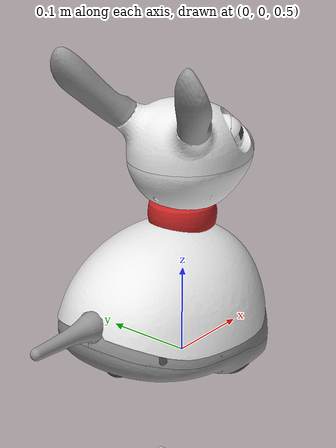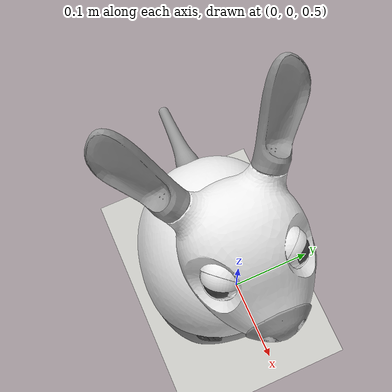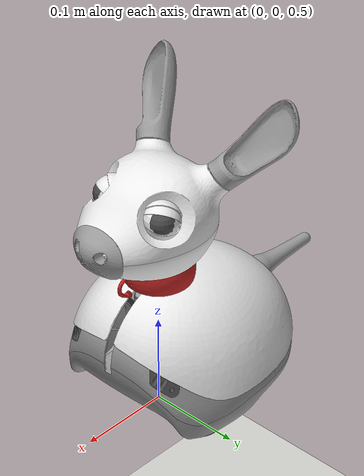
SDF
<sdf version="1.7">
 <world name="default">
  <physics name="default_physics" default="0" type="ode">
   <max_step_size>0.001</max_step_size>
   <real_time_factor>1</real_time_factor>
   <real_time_update_rate>1000</real_time_update_rate>
  </physics>
  <scene><ambient>0.4 0.4 0.4 1</ambient><background>0.7 0.7 0.7 1</background><shadows>1</shadows></scene>
  <light name="sun" type="directional">
   <pose>0 0 10 0 -0 0</pose>
   <diffuse>0.8 0.8 0.8 1</diffuse>
   <specular>0.1 0.1 0.1 1</specular>
   <attenuation>
    <range>1000</range>
    <constant>0.9</constant>
    <linear>0.01</linear>
    <quadratic>0.001</quadratic>
   </attenuation>
   <direction>-0.5 0.5 -1</direction>
   <spot><inner_angle>0</inner_angle><outer_angle>0</outer_angle><falloff>0</falloff></spot>
  </light>
  <model name="ground_plane">
   <static>1</static>
   <link name="link">
    <collision name="collision">
     <geometry><plane><normal>0 0 1</normal><size>100 100</size></plane></geometry>
     <surface>
      <contact><collide_bitmask>65535</collide_bitmask></contact>
      <friction><ode><mu>100</mu><mu2>50</mu2></ode></friction>
     </surface>
    </collision>
    <visual name="visual">
     <cast_shadows>0</cast_shadows>
     <geometry><plane><normal>0 0 1</normal><size>100 100</size></plane></geometry>
     <material>
      <script><uri>file://media/materials/scripts/gazebo.material</uri><name>Gazebo/Grey</name></script>
     </material>
    </visual>
   </link>
   <pose>0 0 -1 0 -0 0</pose>
  </model>
  <model name="miro">
   <frame name="miro_body::__model__" attached_to="miro_body::body">
    <pose relative_to="__model__">0 0 0 0 -0 0</pose>
   </frame>
   <link name="miro_body::body">
    <inertial>
     <pose>-0.06 0 0.05 0 -0 0</pose>
     <mass>1.5708</mass>
     <inertia>
      <ixx>0.00523599</ixx>
      <ixy>0</ixy>
      <ixz>0</ixz>
      <iyy>0.00523599</iyy>
      <iyz>0</iyz>
      <izz>0.00785398</izz>
     </inertia>
    </inertial>
    <visual name="visual_valance">
     <geometry><mesh><uri>model://miro_model/meshes/valance.dae</uri></mesh></geometry>
     <material>
      <script><uri>file://media/materials/scripts/gazebo.material</uri><name>Gazebo/Grey</name></script>
     </material>
    </visual>
    <collision name="collision_valance">
     <geometry><mesh><uri>model://miro_model/meshes/valance_collision.dae</uri></mesh></geometry>
     <surface><friction><ode><mu>0.1</mu><mu2>0.1</mu2></ode></friction></surface>
    </collision>
    <visual name="visual_skirt_lh">
     <geometry><mesh><uri>model://miro_model/meshes/skirt_lh.dae</uri></mesh></geometry>
     <material>
      <script><uri>file://media/materials/scripts/gazebo.material</uri><name>Gazebo/Grey</name></script>
     </material>
    </visual>
    <visual name="visual_skirt_rh">
     <geometry><mesh><uri>model://miro_model/meshes/skirt_rh.dae</uri></mesh></geometry>
     <material>
      <script><uri>file://media/materials/scripts/gazebo.material</uri><name>Gazebo/Grey</name></script>
     </material>
    </visual>
    <visual name="visual_cliff_sensor_L_asm">
     <geometry><mesh><uri>model://miro_model/meshes/cliff_sensor_L_asm.dae</uri></mesh></geometry>
     <material>
      <script><uri>file://media/materials/scripts/gazebo.material</uri><name>Gazebo/DarkGrey</name></script>
     </material>
    </visual>
    <visual name="visual_cliff_sensor_R_asm">
     <geometry><mesh><uri>model://miro_model/meshes/cliff_sensor_R_asm.dae</uri></mesh></geometry>
     <material>
      <script><uri>file://media/materials/scripts/gazebo.material</uri><name>Gazebo/DarkGrey</name></script>
     </material>
    </visual>
    <visual name="visual_light_sensor_holder_asm_L">
     <geometry><mesh><uri>model://miro_model/meshes/light_sensor_holder_asm_L.dae</uri></mesh></geometry>
     <material>
      <script><uri>file://media/materials/scripts/gazebo.material</uri><name>Gazebo/DarkGrey</name></script>
     </material>
    </visual>
    <visual name="visual_light_sensor_holder_asm_R">
     <geometry><mesh><uri>model://miro_model/meshes/light_sensor_holder_asm_R.dae</uri></mesh></geometry>
     <material>
      <script><uri>file://media/materials/scripts/gazebo.material</uri><name>Gazebo/DarkGrey</name></script>
     </material>
    </visual>
    <visual name="visual_body_shell">
     <geometry><mesh><uri>model://miro_model/meshes/body_shell.dae</uri></mesh></geometry>
     <material>
      <script><uri>file://media/materials/scripts/gazebo.material</uri><name>Gazebo/White</name></script>
     </material>
    </visual>
    <collision name="collision_body_shell">
     <geometry><mesh><uri>model://miro_model/meshes/body_shell_collision.dae</uri></mesh></geometry>
     <surface><friction><ode><mu>0.1</mu><mu2>0.1</mu2></ode></friction></surface>
    </collision>
    <visual name="visual_slider">
     <geometry><mesh><uri>model://miro_model/meshes/slider.dae</uri></mesh></geometry>
     <material>
      <script><uri>file://media/materials/scripts/gazebo.material</uri><name>Gazebo/DarkGrey</name></script>
     </material>
    </visual>
    <collision name="collision_slider">
     <pose>-0.1075 0 0.0264 0 -0 0</pose>
     <geometry><sphere><radius>0.015</radius></sphere></geometry>
     <surface><friction><ode><mu>0.01</mu><mu2>0.01</mu2></ode></friction></surface>
    </collision>
    <sensor name="acc_body" type="imu">
     <always_on>1</always_on>
     <update_rate>50</update_rate>
     <visualize>0</visualize>
    </sensor>
    <sensor name="cliff_l" type="sonar">
     <pose>0.062 0.055 0.085 0 -0.52 0</pose>
     <always_on>1</always_on>
     <update_rate>50</update_rate>
     <visualize>0</visualize>
     <sonar><min>0</min><max>0.5</max><radius>0.025</radius></sonar>
    </sensor>
    <sensor name="cliff_r" type="sonar">
     <pose>0.062 -0.055 0.085 0 -0.52 0</pose>
     <always_on>1</always_on>
     <update_rate>50</update_rate>
     <visualize>0</visualize>
     <sonar><min>0</min><max>0.5</max><radius>0.025</radius></sonar>
    </sensor>
    <sensor name="lightfl" type="camera">
     <pose>0.055 0.065 0.08 -0 -0.06 0.52</pose>
     <camera>
      <horizontal_fov>1.57</horizontal_fov>
      <image><width>16</width><height>12</height></image>
      <clip><near>0.01</near><far>10</far></clip>
     </camera>
     <always_on>1</always_on>
     <update_rate>5</update_rate>
     <visualize>0</visualize>
    </sensor>
    <sensor name="lightfr" type="camera">
     <pose>0.055 -0.065 0.08 0 -0.06 -0.52</pose>
     <camera>
      <horizontal_fov>1.57</horizontal_fov>
      <image><width>16</width><height>12</height></image>
      <clip><near>0.01</near><far>10</far></clip>
     </camera>
     <always_on>1</always_on>
     <update_rate>5</update_rate>
     <visualize>0</visualize>
    </sensor>
    <sensor name="lightrl" type="camera">
     <pose>-0.125 0.072 0.06 0 -0.26 2.61</pose>
     <camera>
      <horizontal_fov>1.57</horizontal_fov>
      <image><width>16</width><height>12</height></image>
      <clip><near>0.01</near><far>10</far></clip>
     </camera>
     <always_on>1</always_on>
     <update_rate>5</update_rate>
     <visualize>0</visualize>
    </sensor>
    <sensor name="lightrr" type="camera">
     <pose>-0.125 -0.072 0.06 0 -0.26 -2.61</pose>
     <camera>
      <horizontal_fov>1.57</horizontal_fov>
      <image><width>16</width><height>12</height></image>
      <clip><near>0.01</near><far>10</far></clip>
     </camera>
     <always_on>1</always_on>
     <update_rate>5</update_rate>
     <visualize>0</visualize>
    </sensor>
    <pose relative_to="miro_body::__model__">0 0 0 0 -0 0</pose>
   </link>
   <link name="miro_body::wheel_lh">
    <inertial>
     <pose>0.00063 0.07779 0.044838 0 -0 0</pose>
     <mass>0.134041</mass>
     <inertia>
      <ixx>0.00014298</ixx>
      <ixy>0</ixy>
      <ixz>0</ixz>
      <iyy>0.00014298</iyy>
      <iyz>0</iyz>
      <izz>0.00014298</izz>
     </inertia>
    </inertial>
    <visual name="visual_wheel_tyre_lh">
     <geometry><mesh><uri>model://miro_model/meshes/wheel_tyre_lh.dae</uri></mesh></geometry>
     <material>
      <script><uri>file://media/materials/scripts/gazebo.material</uri><name>Gazebo/DarkGrey</name></script>
     </material>
    </visual>
    <collision name="collision_wheel_tyre_lh">
     <pose>0.00063 0.07779 0.044838 -1.5446 0 0</pose>
     <geometry><cylinder><radius>0.045</radius><length>0.002</length></cylinder></geometry>
     <surface><friction><ode><mu>1</mu><mu2>1</mu2></ode></friction></surface>
    </collision>
    <visual name="visual_wheel_rim_lh">
     <geometry><mesh><uri>model://miro_model/meshes/wheel_rim_lh.dae</uri></mesh></geometry>
     <material>
      <script><uri>file://media/materials/scripts/gazebo.material</uri><name>Gazebo/Grey</name></script>
     </material>
    </visual>
    <pose relative_to="miro_body::__model__">0 0 0 0 -0 0</pose>
   </link>
   <link name="miro_body::wheel_rh">
    <inertial>
     <pose>0.00063 -0.07779 0.044838 0 -0 0</pose>
     <mass>0.134041</mass>
     <inertia>
      <ixx>0.00014298</ixx>
      <ixy>0</ixy>
      <ixz>0</ixz>
      <iyy>0.00014298</iyy>
      <iyz>0</iyz>
      <izz>0.00014298</izz>
     </inertia>
    </inertial>
    <visual name="visual_wheel_tyre_rh">
     <geometry><mesh><uri>model://miro_model/meshes/wheel_tyre_rh.dae</uri></mesh></geometry>
     <material>
      <script><uri>file://media/materials/scripts/gazebo.material</uri><name>Gazebo/DarkGrey</name></script>
     </material>
    </visual>
    <collision name="collision_wheel_tyre_rh">
     <pose>0.00063 -0.07779 0.044838 1.5446 -0 0</pose>
     <geometry><cylinder><radius>0.045</radius><length>0.002</length></cylinder></geometry>
     <surface><friction><ode><mu>1</mu><mu2>1</mu2></ode></friction></surface>
    </collision>
    <visual name="visual_wheel_rim_rh">
     <geometry><mesh><uri>model://miro_model/meshes/wheel_rim_rh.dae</uri></mesh></geometry>
     <material>
      <script><uri>file://media/materials/scripts/gazebo.material</uri><name>Gazebo/Grey</name></script>
     </material>
    </visual>
    <pose relative_to="miro_body::__model__">0 0 0 0 -0 0</pose>
   </link>
   <joint name="miro_body::body_wheel_lh" type="revolute">
    <pose>0.00063 0.07779 0.044838 0 -0 0</pose>
    <parent>miro_body::body</parent>
    <child>miro_body::wheel_lh</child>
    <axis>
     <xyz>0 0.999657 0.026185</xyz>
     <dynamics>
      <friction>0.1</friction>
      <damping>0.1</damping>
      <spring_reference>0</spring_reference>
      <spring_stiffness>0</spring_stiffness>
     </dynamics>
     <limit><lower>-1e+16</lower><upper>1e+16</upper></limit>
    </axis>
   </joint>
   <joint name="miro_body::body_wheel_rh" type="revolute">
    <pose>0.00063 -0.07779 0.044838 0 -0 0</pose>
    <parent>miro_body::body</parent>
    <child>miro_body::wheel_rh</child>
    <axis>
     <xyz>0 0.999657 -0.026185</xyz>
     <dynamics>
      <friction>0.1</friction>
      <damping>0.1</damping>
      <spring_reference>0</spring_reference>
      <spring_stiffness>0</spring_stiffness>
     </dynamics>
     <limit><lower>-1e+16</lower><upper>1e+16</upper></limit>
    </axis>
   </joint>
   <frame name="miro_tail::__model__" attached_to="miro_tail::tail_gmbl">
    <pose relative_to="__model__">0 0 0 0 -0 0</pose>
   </frame>
   <link name="miro_tail::tail_gmbl">
    <inertial>
     <pose>-0.143 0 0.085 0 -0 0</pose>
     <mass>0.056549</mass>
     <inertia>
      <ixx>3.393e-05</ixx>
      <ixy>0</ixy>
      <ixz>0</ixz>
      <iyy>3.393e-05</iyy>
      <iyz>0</iyz>
      <izz>3.393e-05</izz>
     </inertia>
    </inertial>
    <pose relative_to="miro_tail::__model__">0 0 0 0 -0 0</pose>
   </link>
   <joint name="miro_tail::body_tail_gmbl" type="revolute">
    <pose>-0.143 0 0.085 0 -0 0</pose>
    <parent>miro_body::body</parent>
    <child>miro_tail::tail_gmbl</child>
    <axis>
     <xyz>0 1 0</xyz>
     <limit><lower>-1.57</lower><upper>1.57</upper></limit>
     <dynamics>
      <friction>0.01</friction>
      <damping>0.02</damping>
      <spring_reference>0</spring_reference>
      <spring_stiffness>0</spring_stiffness>
     </dynamics>
    </axis>
   </joint>
   <link name="miro_tail::tail">
    <inertial>
     <pose>-0.143 0 0.085 0 -0 0</pose>
     <mass>0.056549</mass>
     <inertia>
      <ixx>3.393e-05</ixx>
      <ixy>0</ixy>
      <ixz>0</ixz>
      <iyy>3.393e-05</iyy>
      <iyz>0</iyz>
      <izz>3.393e-05</izz>
     </inertia>
    </inertial>
    <visual name="visual_tail">
     <geometry><mesh><uri>model://miro_model/meshes/tail.dae</uri></mesh></geometry>
     <material>
      <script><uri>file://media/materials/scripts/gazebo.material</uri><name>Gazebo/Grey</name></script>
     </material>
    </visual>
    <collision name="collision_tail">
     <geometry><mesh><uri>model://miro_model/meshes/tail_collision.dae</uri></mesh></geometry>
     <surface><friction><ode><mu>0.1</mu><mu2>0.1</mu2></ode></friction></surface>
    </collision>
    <pose relative_to="miro_tail::__model__">0 0 0 0 -0 0</pose>
   </link>
   <joint name="miro_tail::tail_gmbl_tail" type="revolute">
    <pose>-0.143 0 0.085 0 -0 0</pose>
    <parent>miro_tail::tail_gmbl</parent>
    <child>miro_tail::tail</child>
    <axis>
     <xyz>0 0 1</xyz>
     <limit><lower>-1.57</lower><upper>1.57</upper></limit>
     <dynamics>
      <friction>0.01</friction>
      <damping>0.02</damping>
      <spring_reference>0</spring_reference>
      <spring_stiffness>0</spring_stiffness>
     </dynamics>
    </axis>
   </joint>
   <joint name="body_neck" type="revolute">
    <pose>-0.002 0 0.081 0 -0 0</pose>
    <parent>miro_body::body</parent>
    <child>miro_neck::neck</child>
    <axis>
     <xyz>0 1 0</xyz>
     <limit><lower>0</lower><upper>1.57</upper></limit>
     <dynamics>
      <spring_stiffness>0.4</spring_stiffness>
      <spring_reference>0</spring_reference>
      <friction>0.01</friction>
      <damping>0.1</damping>
     </dynamics>
    </axis>
   </joint>
   <frame name="miro_neck::__model__" attached_to="miro_neck::neck">
    <pose relative_to="__model__">0 0 0 0 -0 0</pose>
   </frame>
   <link name="miro_neck::neck">
    <inertial>
     <pose>-0.002 0 0.141 0 -0 0</pose>
     <mass>0.075398</mass>
     <inertia>
      <ixx>9.802e-05</ixx>
      <ixy>0</ixy>
      <ixz>0</ixz>
      <iyy>9.802e-05</iyy>
      <iyz>0</iyz>
      <izz>1.508e-05</izz>
     </inertia>
    </inertial>
    <pose relative_to="miro_neck::__model__">0 0 0 0 -0 0</pose>
   </link>
   <joint name="neck_gmbl" type="revolute">
    <pose>-0.002 0 0.201 0 -0 0</pose>
    <parent>miro_neck::neck</parent>
    <child>miro_gmbl::gmbl</child>
    <axis>
     <xyz>0 0 1</xyz>
     <limit><lower>-1.57</lower><upper>1.57</upper></limit>
     <dynamics>
      <friction>0.01</friction>
      <damping>0.1</damping>
      <spring_reference>0</spring_reference>
      <spring_stiffness>0</spring_stiffness>
     </dynamics>
    </axis>
   </joint>
   <frame name="miro_gmbl::__model__" attached_to="miro_gmbl::gmbl">
    <pose relative_to="__model__">0 0 0 0 -0 0</pose>
   </frame>
   <link name="miro_gmbl::gmbl">
    <inertial>
     <pose>-0.002 0 0.171 0 -0 0</pose>
     <mass>0.03927</mass>
     <inertia>
      <ixx>2.487e-05</ixx>
      <ixy>0</ixy>
      <ixz>0</ixz>
      <iyy>2.487e-05</iyy>
      <iyz>0</iyz>
      <izz>4.909e-05</izz>
     </inertia>
    </inertial>
    <visual name="visual_collar">
     <geometry><mesh><uri>model://miro_model/meshes/collar.dae</uri></mesh></geometry>
     <material>
      <script><uri>file://media/materials/scripts/gazebo.material</uri><name>Gazebo/Red</name></script>
     </material>
    </visual>
    <pose relative_to="miro_gmbl::__model__">0 0 0 0 -0 0</pose>
   </link>
   <joint name="gmbl_head" type="revolute">
    <pose>-0.002 0 0.201 0 -0 0</pose>
    <parent>miro_gmbl::gmbl</parent>
    <child>miro_head::head</child>
    <axis>
     <xyz>0 1 0</xyz>
     <limit><lower>-1.57</lower><upper>1.57</upper></limit>
     <dynamics>
      <spring_stiffness>0.1</spring_stiffness>
      <spring_reference>-0.5</spring_reference>
      <friction>0.01</friction>
      <damping>0.1</damping>
     </dynamics>
    </axis>
   </joint>
   <frame name="miro_head::__model__" attached_to="miro_head::head">
    <pose relative_to="__model__">0 0 0 0 -0 0</pose>
   </frame>
   <link name="miro_head::head">
    <inertial>
     <pose>-0.002 0 0.221 0 -0 0</pose>
     <mass>0.261799</mass>
     <inertia>
      <ixx>0.00043633</ixx>
      <ixy>0</ixy>
      <ixz>0</ixz>
      <iyy>0.00043633</iyy>
      <iyz>0</iyz>
      <izz>0.00043633</izz>
     </inertia>
    </inertial>
    <visual name="visual_head_lower">
     <geometry><mesh><uri>model://miro_model/meshes/head_lower.dae</uri></mesh></geometry>
     <material>
      <script><uri>file://media/materials/scripts/gazebo.material</uri><name>Gazebo/White</name></script>
     </material>
    </visual>
    <collision name="collision_head_lower">
     <geometry><mesh><uri>model://miro_model/meshes/head_lower_collision.dae</uri></mesh></geometry>
     <surface><friction><ode><mu>0.1</mu><mu2>0.1</mu2></ode></friction></surface>
    </collision>
    <visual name="visual_head_upper">
     <geometry><mesh><uri>model://miro_model/meshes/head_upper.dae</uri></mesh></geometry>
     <material>
      <script><uri>file://media/materials/scripts/gazebo.material</uri><name>Gazebo/White</name></script>
     </material>
    </visual>
    <collision name="collision_head_upper">
     <geometry><mesh><uri>model://miro_model/meshes/head_upper_collision.dae</uri></mesh></geometry>
     <surface><friction><ode><mu>0.1</mu><mu2>0.1</mu2></ode></friction></surface>
    </collision>
    <visual name="visual_eyelid_lower_lh">
     <geometry><mesh><uri>model://miro_model/meshes/eyelid_lower_lh.dae</uri></mesh></geometry>
     <material>
      <script><uri>file://media/materials/scripts/gazebo.material</uri><name>Gazebo/White</name></script>
     </material>
    </visual>
    <visual name="visual_eyelid_lower_rh">
     <geometry><mesh><uri>model://miro_model/meshes/eyelid_lower_rh.dae</uri></mesh></geometry>
     <material>
      <script><uri>file://media/materials/scripts/gazebo.material</uri><name>Gazebo/White</name></script>
     </material>
    </visual>
    <visual name="visual_nose">
     <geometry><mesh><uri>model://miro_model/meshes/nose.dae</uri></mesh></geometry>
     <material>
      <script><uri>file://media/materials/scripts/gazebo.material</uri><name>Gazebo/Grey</name></script>
     </material>
    </visual>
    <collision name="collision_nose">
     <geometry><mesh><uri>model://miro_model/meshes/nose_collision.dae</uri></mesh></geometry>
     <surface><friction><ode><mu>0.3</mu><mu2>0.3</mu2></ode></friction></surface>
    </collision>
    <visual name="visual_1">
     <pose>0.029 0.033 0.252 0 -0 0</pose>
     <geometry><sphere><radius>0.018</radius></sphere></geometry>
     <material>
      <script><uri>file://media/materials/scripts/gazebo.material</uri><name>Gazebo/White</name></script>
     </material>
    </visual>
    <visual name="visual_2">
     <pose>0.0315 0.036 0.254 0 -0 0</pose>
     <geometry><sphere><radius>0.015</radius></sphere></geometry>
     <material>
      <script><uri>file://media/materials/scripts/gazebo.material</uri><name>Gazebo/DarkGrey</name></script>
     </material>
    </visual>
    <visual name="visual_3">
     <pose>0.029 -0.033 0.252 0 -0 0</pose>
     <geometry><sphere><radius>0.018</radius></sphere></geometry>
     <material>
      <script><uri>file://media/materials/scripts/gazebo.material</uri><name>Gazebo/White</name></script>
     </material>
    </visual>
    <visual name="visual_4">
     <pose>0.0315 -0.036 0.254 0 -0 0</pose>
     <geometry><sphere><radius>0.015</radius></sphere></geometry>
     <material>
      <script><uri>file://media/materials/scripts/gazebo.material</uri><name>Gazebo/DarkGrey</name></script>
     </material>
    </visual>
    <sensor name="eye_l" type="wideanglecamera">
     <pose>0.0377 0.0431 0.2595 -0.4262 -0.6816 0.6244</pose>
     <camera>
      <horizontal_fov>2.0944</horizontal_fov>
      <image><width>1280</width><height>720</height></image>
      <clip><near>0.006</near><far>100</far></clip>
      <lens>
       <type>custom</type>
       <scale_to_hfov>1</scale_to_hfov>
       <custom_function><c1>2</c1><c2>1.25</c2><c3>0</c3><f>1</f><fun>sin</fun></custom_function>
      </lens>
     </camera>
     <always_on>1</always_on>
     <update_rate>10</update_rate>
     <visualize>0</visualize>
    </sensor>
    <sensor name="eye_r" type="wideanglecamera">
     <pose>0.0377 -0.0431 0.2595 0.4261 -0.6816 -0.6244</pose>
     <camera>
      <horizontal_fov>2.0944</horizontal_fov>
      <image><width>1280</width><height>720</height></image>
      <clip><near>0.006</near><far>100</far></clip>
      <lens>
       <type>custom</type>
       <scale_to_hfov>1</scale_to_hfov>
       <custom_function><c1>2</c1><c2>1.25</c2><c3>0</c3><f>1</f><fun>sin</fun></custom_function>
      </lens>
     </camera>
     <always_on>1</always_on>
     <update_rate>10</update_rate>
     <visualize>0</visualize>
    </sensor>
    <sensor name="eye_l_narrow" type="camera">
     <pose>0.0377 0.0431 0.2595 -0.4262 -0.6816 0.6244</pose>
     <camera>
      <horizontal_fov>2.0944</horizontal_fov>
      <image><width>1280</width><height>720</height></image>
      <clip><near>0.006</near><far>100</far></clip>
     </camera>
     <always_on>1</always_on>
     <update_rate>10</update_rate>
     <visualize>0</visualize>
    </sensor>
    <sensor name="eye_r_narrow" type="camera">
     <pose>0.0377 -0.0431 0.2595 0.4261 -0.6816 -0.6244</pose>
     <camera>
      <horizontal_fov>2.0944</horizontal_fov>
      <image><width>1280</width><height>720</height></image>
      <clip><near>0.006</near><far>100</far></clip>
     </camera>
     <always_on>1</always_on>
     <update_rate>10</update_rate>
     <visualize>0</visualize>
    </sensor>
    <sensor name="gaze" type="camera">
     <pose>0.0577 0 0.2795 0 -0.785398 0</pose>
     <camera>
      <horizontal_fov>1</horizontal_fov>
      <image><width>1280</width><height>720</height></image>
      <clip><near>0.001</near><far>100</far></clip>
     </camera>
     <always_on>1</always_on>
     <update_rate>10</update_rate>
     <visualize>0</visualize>
    </sensor>
    <sensor name="overhead" type="camera">
     <pose>0 0 1 0 1.22 0</pose>
     <camera>
      <horizontal_fov>1.0472</horizontal_fov>
      <image><width>1280</width><height>720</height></image>
      <clip><near>0.01</near><far>2</far></clip>
     </camera>
     <always_on>1</always_on>
     <update_rate>10</update_rate>
     <visualize>0</visualize>
    </sensor>
    <sensor name="acc_head" type="imu">
     <always_on>1</always_on>
     <update_rate>50</update_rate>
     <visualize>0</visualize>
    </sensor>
    <sensor name="sonar" type="sonar">
     <pose>0.1 0 0.235 3.14159 -1.57079 3.14159</pose>
     <always_on>1</always_on>
     <update_rate>50</update_rate>
     <visualize>0</visualize>
     <sonar><min>0</min><max>1</max><radius>0.309</radius></sonar>
    </sensor>
    <pose relative_to="miro_head::__model__">0 0 0 0 -0 0</pose>
   </link>
   <link name="miro_head::eyelid_lh">
    <inertial>
     <pose>0.029 0.032 0.252 0 -0 0</pose>
     <mass>0.016755</mass>
     <inertia>
      <ixx>4.47e-06</ixx>
      <ixy>0</ixy>
      <ixz>0</ixz>
      <iyy>4.47e-06</iyy>
      <iyz>0</iyz>
      <izz>4.47e-06</izz>
     </inertia>
    </inertial>
    <visual name="visual_eyelid_lh">
     <geometry><mesh><uri>model://miro_model/meshes/eyelid_lh.dae</uri></mesh></geometry>
     <material>
      <script><uri>file://media/materials/scripts/gazebo.material</uri><name>Gazebo/White</name></script>
     </material>
    </visual>
    <pose relative_to="miro_head::__model__">0 0 0 0 -0 0</pose>
   </link>
   <link name="miro_head::eyelid_rh">
    <inertial>
     <pose>0.029 -0.032 0.252 0 -0 0</pose>
     <mass>0.016755</mass>
     <inertia>
      <ixx>4.47e-06</ixx>
      <ixy>0</ixy>
      <ixz>0</ixz>
      <iyy>4.47e-06</iyy>
      <iyz>0</iyz>
      <izz>4.47e-06</izz>
     </inertia>
    </inertial>
    <visual name="visual_eyelid_rh">
     <geometry><mesh><uri>model://miro_model/meshes/eyelid_rh.dae</uri></mesh></geometry>
     <material>
      <script><uri>file://media/materials/scripts/gazebo.material</uri><name>Gazebo/White</name></script>
     </material>
    </visual>
    <pose relative_to="miro_head::__model__">0 0 0 0 -0 0</pose>
   </link>
   <joint name="miro_head::head_eyelid_lh" type="revolute">
    <pose>0.029 0.032 0.252 0 -0 0</pose>
    <parent>miro_head::head</parent>
    <child>miro_head::eyelid_lh</child>
    <axis>
     <xyz>-0.675 0.675 -0.2978</xyz>
     <limit><lower>-1.57</lower><upper>1.57</upper></limit>
     <dynamics>
      <friction>0.1</friction>
      <damping>0.1</damping>
      <spring_reference>-0.5</spring_reference>
      <spring_stiffness>0.02</spring_stiffness>
     </dynamics>
    </axis>
    <physics>
     <ode>
      <cfm_damping>1</cfm_damping>
      <implicit_spring_damper>1</implicit_spring_damper>
      <limit><cfm>0</cfm><erp>0.2</erp></limit>
     </ode>
    </physics>
   </joint>
   <joint name="miro_head::head_eyelid_rh" type="revolute">
    <pose>0.029 -0.032 0.252 0 -0 0</pose>
    <parent>miro_head::head</parent>
    <child>miro_head::eyelid_rh</child>
    <axis>
     <xyz>0.675 0.675 0.2978</xyz>
     <limit><lower>-1.57</lower><upper>1.57</upper></limit>
     <dynamics>
      <friction>0.1</friction>
      <damping>0.1</damping>
      <spring_reference>-0.5</spring_reference>
      <spring_stiffness>0.02</spring_stiffness>
     </dynamics>
    </axis>
    <physics>
     <ode>
      <cfm_damping>1</cfm_damping>
      <implicit_spring_damper>1</implicit_spring_damper>
      <limit><cfm>0</cfm><erp>0.2</erp></limit>
     </ode>
    </physics>
   </joint>
   <link name="miro_head::ear_lh">
    <inertial>
     <pose>-0.0437 0.0474 0.2773 0 -0 0</pose>
     <mass>0.056549</mass>
     <inertia>
      <ixx>3.393e-05</ixx>
      <ixy>0</ixy>
      <ixz>0</ixz>
      <iyy>3.393e-05</iyy>
      <iyz>0</iyz>
      <izz>3.393e-05</izz>
     </inertia>
    </inertial>
    <visual name="visual_ear_lh">
     <geometry><mesh><uri>model://miro_model/meshes/ear_lh.dae</uri></mesh></geometry>
     <material>
      <script><uri>file://media/materials/scripts/gazebo.material</uri><name>Gazebo/Grey</name></script>
     </material>
    </visual>
    <collision name="collision_ear_lh">
     <geometry><mesh><uri>model://miro_model/meshes/ear_lh_collision.dae</uri></mesh></geometry>
     <surface><friction><ode><mu>0.3</mu><mu2>0.3</mu2></ode></friction></surface>
    </collision>
    <pose relative_to="miro_head::__model__">0 0 0 0 -0 0</pose>
   </link>
   <link name="miro_head::ear_rh">
    <inertial>
     <pose>-0.0437 -0.0474 0.2773 0 -0 0</pose>
     <mass>0.056549</mass>
     <inertia>
      <ixx>3.393e-05</ixx>
      <ixy>0</ixy>
      <ixz>0</ixz>
      <iyy>3.393e-05</iyy>
      <iyz>0</iyz>
      <izz>3.393e-05</izz>
     </inertia>
    </inertial>
    <visual name="visual_ear_rh">
     <geometry><mesh><uri>model://miro_model/meshes/ear_rh.dae</uri></mesh></geometry>
     <material>
      <script><uri>file://media/materials/scripts/gazebo.material</uri><name>Gazebo/Grey</name></script>
     </material>
    </visual>
    <collision name="collision_ear_rh">
     <geometry><mesh><uri>model://miro_model/meshes/ear_rh_collision.dae</uri></mesh></geometry>
     <surface><friction><ode><mu>0.3</mu><mu2>0.3</mu2></ode></friction></surface>
    </collision>
    <pose relative_to="miro_head::__model__">0 0 0 0 -0 0</pose>
   </link>
   <joint name="miro_head::head_ear_lh" type="revolute">
    <pose>-0.0437 0.0474 0.2773 0 -0 0</pose>
    <parent>miro_head::head</parent>
    <child>miro_head::ear_lh</child>
    <axis>
     <xyz>-0.573 0.4344 0.6949</xyz>
     <limit><lower>-1.57</lower><upper>1.57</upper></limit>
     <dynamics>
      <friction>0.01</friction>
      <damping>0.001</damping>
      <spring_reference>0</spring_reference>
      <spring_stiffness>0</spring_stiffness>
     </dynamics>
    </axis>
   </joint>
   <joint name="miro_head::head_ear_rh" type="revolute">
    <pose>-0.0437 -0.0474 0.2773 0 -0 0</pose>
    <parent>miro_head::head</parent>
    <child>miro_head::ear_rh</child>
    <axis>
     <xyz>-0.573 -0.4344 0.6949</xyz>
     <limit><lower>-1.57</lower><upper>1.57</upper></limit>
     <dynamics>
      <friction>0.01</friction>
      <damping>0.001</damping>
      <spring_reference>0</spring_reference>
      <spring_stiffness>0</spring_stiffness>
     </dynamics>
    </axis>
   </joint>
   <plugin name="miro_model" filename="libmiro_gazebo.so"/>
   <pose>0 0 0.5 0 -0 0</pose>
  </model>
  <gravity>0 0 -9.8</gravity>
  <magnetic_field>6e-06 2.3e-05 -4.2e-05</magnetic_field>
  <atmosphere type="adiabatic"/>
  <spherical_coordinates>
   <surface_model>EARTH_WGS84</surface_model>
   <latitude_deg>0</latitude_deg>
   <longitude_deg>0</longitude_deg>
   <elevation>0</elevation>
   <heading_deg>0</heading_deg>
  </spherical_coordinates>
  <model name="bigFloorBox">
   <link name="link_0">
    <inertial>
     <mass>402.228</mass>
     <inertia><ixx>13638.2</ixx><ixy>0</ixy><ixz>0</ixz><iyy>13395.7</iyy><iyz>0</iyz><izz>26966.8</izz></inertia>
    </inertial>
    <gravity>0</gravity>
    <visual name="visual">
     <geometry><box><size>20 20 0.5</size></box></geometry>
     <material>
      <lighting>1</lighting>
      <script><uri>file://media/materials/scripts/gazebo.material</uri><name>Gazebo/CeilingTiled</name></script>
      <shader type="pixel"><normal_map>__default__</normal_map></shader>
      <ambient>0.3 0.3 0.3 1</ambient>
      <diffuse>0.7 0.7 0.7 1</diffuse>
      <specular>0.01 0.01 0.01 1</specular>
      <emissive>0 0 0 1</emissive>
     </material>
    </visual>
    <collision name="collision_1">
     <geometry><box><size>20 20 0.5</size></box></geometry>
     <surface>
      <friction>
       <ode><mu>0.1</mu><mu2>0.1</mu2><fdir1>0 0 0</fdir1><slip1>0</slip1><slip2>0</slip2></ode>
       <torsional>
        <coefficient>1</coefficient>
        <patch_radius>0</patch_radius>
        <surface_radius>0</surface_radius>
        <use_patch_radius>1</use_patch_radius>
        <ode><slip>0</slip></ode>
       </torsional>
      </friction>
      <bounce><restitution_coefficient>0</restitution_coefficient><threshold>1e+06</threshold></bounce>
      <contact>
       <collide_without_contact>0</collide_without_contact>
       <collide_without_contact_bitmask>1</collide_without_contact_bitmask>
       <collide_bitmask>1</collide_bitmask>
       <ode>
        <soft_cfm>0</soft_cfm>
        <soft_erp>0.2</soft_erp>
        <kp>1e+13</kp>
        <kd>1</kd>
        <max_vel>0.01</max_vel>
        <min_depth>0</min_depth>
       </ode>
       <bullet>
        <split_impulse>1</split_impulse>
        <split_impulse_penetration_threshold>-0.01</split_impulse_penetration_threshold>
        <soft_cfm>0</soft_cfm>
        <soft_erp>0.2</soft_erp>
        <kp>1e+13</kp>
        <kd>1</kd>
       </bullet>
      </contact>
     </surface>
    </collision>
   </link>
   <static>1</static>
  </model>
 </world>
</sdf>
